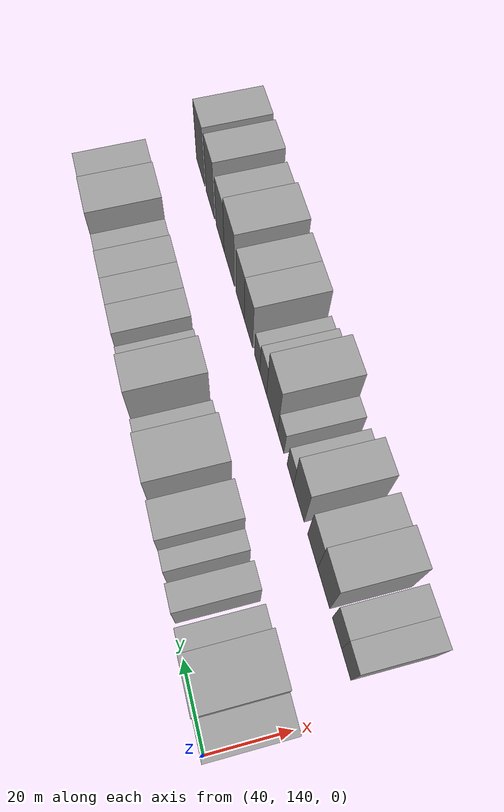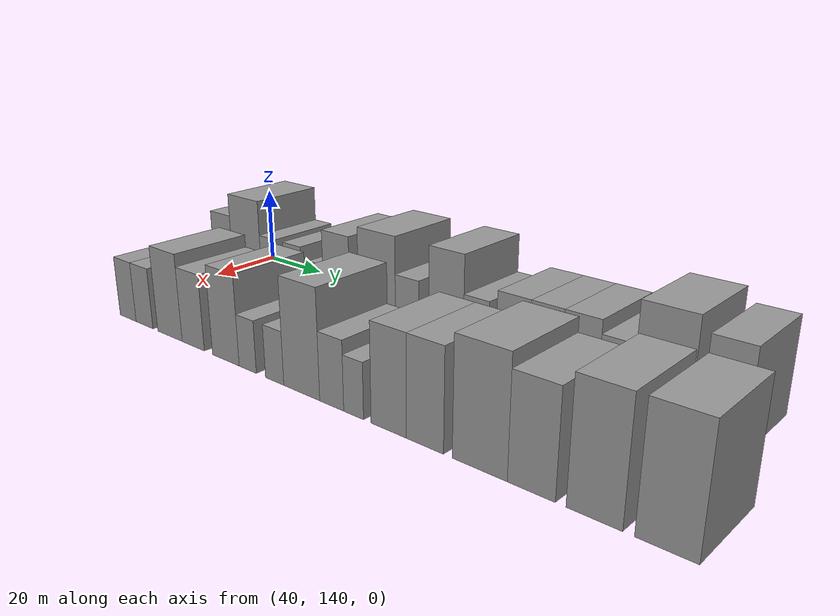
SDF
<sdf version="1.6">
 <world name="default">
  <model name="building_48">
   <static>1</static>
   <pose>50.0000 142.7689 0 0.000000 0.000000 0.000000</pose>
   <link name="link">
    <pose>0 0 9.00 0 0 0</pose>
    <collision name="collision"><geometry><box><size>20.0000 8.1947 18.0000</size></box></geometry></collision>
    <visual name="visual">
     <cast_shadows>0</cast_shadows>
     <geometry><box><size>20.0000 8.1947 18.0000</size></box></geometry>
     <material>
      <script>
       <uri>model://grey_wall/materials/scripts</uri>
       <uri>model://grey_wall/materials/textures</uri>
       <name>vrc/grey_wall</name>
      </script>
     </material>
    </visual>
   </link>
  </model>
  <model name="building_49">
   <static>1</static>
   <pose>50.0000 152.8509 0 0.000000 0.000000 0.000000</pose>
   <link name="link">
    <pose>0 0 12.00 0 0 0</pose>
    <collision name="collision"><geometry><box><size>20.0000 11.9694 24.0000</size></box></geometry></collision>
    <visual name="visual">
     <cast_shadows>0</cast_shadows>
     <geometry><box><size>20.0000 11.9694 24.0000</size></box></geometry>
     <material>
      <script>
       <uri>model://grey_wall/materials/scripts</uri>
       <uri>model://grey_wall/materials/textures</uri>
       <name>vrc/grey_wall</name>
      </script>
     </material>
    </visual>
   </link>
  </model>
  <model name="building_50">
   <static>1</static>
   <pose>50.0000 161.9221 0 0.000000 0.000000 0.000000</pose>
   <link name="link">
    <pose>0 0 7.50 0 0 0</pose>
    <collision name="collision"><geometry><box><size>20.0000 6.1730 15.0000</size></box></geometry></collision>
    <visual name="visual">
     <cast_shadows>0</cast_shadows>
     <geometry><box><size>20.0000 6.1730 15.0000</size></box></geometry>
     <material>
      <script>
       <uri>model://grey_wall/materials/scripts</uri>
       <uri>model://grey_wall/materials/textures</uri>
       <name>vrc/grey_wall</name>
      </script>
     </material>
    </visual>
   </link>
  </model>
  <model name="building_51">
   <static>1</static>
   <pose>50.0000 171.2372 0 0.000000 0.000000 0.000000</pose>
   <link name="link">
    <pose>0 0 7.50 0 0 0</pose>
    <collision name="collision"><geometry><box><size>20.0000 6.4571 15.0000</size></box></geometry></collision>
    <visual name="visual">
     <cast_shadows>0</cast_shadows>
     <geometry><box><size>20.0000 6.4571 15.0000</size></box></geometry>
     <material>
      <script>
       <uri>model://grey_wall/materials/scripts</uri>
       <uri>model://grey_wall/materials/textures</uri>
       <name>vrc/grey_wall</name>
      </script>
     </material>
    </visual>
   </link>
  </model>
  <model name="building_52">
   <static>1</static>
   <pose>50.0000 179.9599 0 0.000000 0.000000 0.000000</pose>
   <link name="link">
    <pose>0 0 6.00 0 0 0</pose>
    <collision name="collision"><geometry><box><size>20.0000 4.9883 12.0000</size></box></geometry></collision>
    <visual name="visual">
     <cast_shadows>0</cast_shadows>
     <geometry><box><size>20.0000 4.9883 12.0000</size></box></geometry>
     <material>
      <script>
       <uri>model://grey_wall/materials/scripts</uri>
       <uri>model://grey_wall/materials/textures</uri>
       <name>vrc/grey_wall</name>
      </script>
     </material>
    </visual>
   </link>
  </model>
  <model name="building_53">
   <static>1</static>
   <pose>50.0000 187.0198 0 0.000000 0.000000 0.000000</pose>
   <link name="link">
    <pose>0 0 10.50 0 0 0</pose>
    <collision name="collision"><geometry><box><size>20.0000 9.1315 21.0000</size></box></geometry></collision>
    <visual name="visual">
     <cast_shadows>0</cast_shadows>
     <geometry><box><size>20.0000 9.1315 21.0000</size></box></geometry>
     <material>
      <script>
       <uri>model://grey_wall/materials/scripts</uri>
       <uri>model://grey_wall/materials/textures</uri>
       <name>vrc/grey_wall</name>
      </script>
     </material>
    </visual>
   </link>
  </model>
  <model name="building_54">
   <static>1</static>
   <pose>50.0000 200.5181 0 0.000000 0.000000 0.000000</pose>
   <link name="link">
    <pose>0 0 12.00 0 0 0</pose>
    <collision name="collision"><geometry><box><size>20.0000 11.8651 24.0000</size></box></geometry></collision>
    <visual name="visual">
     <cast_shadows>0</cast_shadows>
     <geometry><box><size>20.0000 11.8651 24.0000</size></box></geometry>
     <material>
      <script>
       <uri>model://grey_wall/materials/scripts</uri>
       <uri>model://grey_wall/materials/textures</uri>
       <name>vrc/grey_wall</name>
      </script>
     </material>
    </visual>
   </link>
  </model>
  <model name="building_55">
   <static>1</static>
   <pose>50.0000 209.9860 0 0.000000 0.000000 0.000000</pose>
   <link name="link">
    <pose>0 0 7.50 0 0 0</pose>
    <collision name="collision"><geometry><box><size>20.0000 7.0707 15.0000</size></box></geometry></collision>
    <visual name="visual">
     <cast_shadows>0</cast_shadows>
     <geometry><box><size>20.0000 7.0707 15.0000</size></box></geometry>
     <material>
      <script>
       <uri>model://grey_wall/materials/scripts</uri>
       <uri>model://grey_wall/materials/textures</uri>
       <name>vrc/grey_wall</name>
      </script>
     </material>
    </visual>
   </link>
  </model>
  <model name="building_56">
   <static>1</static>
   <pose>50.0000 221.4651 0 0.000000 0.000000 0.000000</pose>
   <link name="link">
    <pose>0 0 12.00 0 0 0</pose>
    <collision name="collision"><geometry><box><size>20.0000 9.8875 24.0000</size></box></geometry></collision>
    <visual name="visual">
     <cast_shadows>0</cast_shadows>
     <geometry><box><size>20.0000 9.8875 24.0000</size></box></geometry>
     <material>
      <script>
       <uri>model://grey_wall/materials/scripts</uri>
       <uri>model://grey_wall/materials/textures</uri>
       <name>vrc/grey_wall</name>
      </script>
     </material>
    </visual>
   </link>
  </model>
  <model name="building_57">
   <static>1</static>
   <pose>50.0000 229.8270 0 0.000000 0.000000 0.000000</pose>
   <link name="link">
    <pose>0 0 7.50 0 0 0</pose>
    <collision name="collision"><geometry><box><size>20.0000 6.8363 15.0000</size></box></geometry></collision>
    <visual name="visual">
     <cast_shadows>0</cast_shadows>
     <geometry><box><size>20.0000 6.8363 15.0000</size></box></geometry>
     <material>
      <script>
       <uri>model://grey_wall/materials/scripts</uri>
       <uri>model://grey_wall/materials/textures</uri>
       <name>vrc/grey_wall</name>
      </script>
     </material>
    </visual>
   </link>
  </model>
  <model name="building_58">
   <static>1</static>
   <pose>50.0000 239.4545 0 0.000000 0.000000 0.000000</pose>
   <link name="link">
    <pose>0 0 9.00 0 0 0</pose>
    <collision name="collision"><geometry><box><size>20.0000 8.4186 18.0000</size></box></geometry></collision>
    <visual name="visual">
     <cast_shadows>0</cast_shadows>
     <geometry><box><size>20.0000 8.4186 18.0000</size></box></geometry>
     <material>
      <script>
       <uri>model://grey_wall/materials/scripts</uri>
       <uri>model://grey_wall/materials/textures</uri>
       <name>vrc/grey_wall</name>
      </script>
     </material>
    </visual>
   </link>
  </model>
  <model name="building_59">
   <static>1</static>
   <pose>50.0000 247.6351 0 0.000000 0.000000 0.000000</pose>
   <link name="link">
    <pose>0 0 9.00 0 0 0</pose>
    <collision name="collision"><geometry><box><size>20.0000 7.9426 18.0000</size></box></geometry></collision>
    <visual name="visual">
     <cast_shadows>0</cast_shadows>
     <geometry><box><size>20.0000 7.9426 18.0000</size></box></geometry>
     <material>
      <script>
       <uri>model://grey_wall/materials/scripts</uri>
       <uri>model://grey_wall/materials/textures</uri>
       <name>vrc/grey_wall</name>
      </script>
     </material>
    </visual>
   </link>
  </model>
  <model name="building_60">
   <static>1</static>
   <pose>50.0000 255.8206 0 0.000000 0.000000 0.000000</pose>
   <link name="link">
    <pose>0 0 9.00 0 0 0</pose>
    <collision name="collision"><geometry><box><size>20.0000 8.4284 18.0000</size></box></geometry></collision>
    <visual name="visual">
     <cast_shadows>0</cast_shadows>
     <geometry><box><size>20.0000 8.4284 18.0000</size></box></geometry>
     <material>
      <script>
       <uri>model://grey_wall/materials/scripts</uri>
       <uri>model://grey_wall/materials/textures</uri>
       <name>vrc/grey_wall</name>
      </script>
     </material>
    </visual>
   </link>
  </model>
  <model name="building_61">
   <static>1</static>
   <pose>50.0000 263.7699 0 0.000000 0.000000 0.000000</pose>
   <link name="link">
    <pose>0 0 7.50 0 0 0</pose>
    <collision name="collision"><geometry><box><size>20.0000 7.4702 15.0000</size></box></geometry></collision>
    <visual name="visual">
     <cast_shadows>0</cast_shadows>
     <geometry><box><size>20.0000 7.4702 15.0000</size></box></geometry>
     <material>
      <script>
       <uri>model://grey_wall/materials/scripts</uri>
       <uri>model://grey_wall/materials/textures</uri>
       <name>vrc/grey_wall</name>
      </script>
     </material>
    </visual>
   </link>
  </model>
  <model name="building_62">
   <static>1</static>
   <pose>50.0000 273.4328 0 0.000000 0.000000 0.000000</pose>
   <link name="link">
    <pose>0 0 12.00 0 0 0</pose>
    <collision name="collision"><geometry><box><size>20.0000 11.8557 24.0000</size></box></geometry></collision>
    <visual name="visual">
     <cast_shadows>0</cast_shadows>
     <geometry><box><size>20.0000 11.8557 24.0000</size></box></geometry>
     <material>
      <script>
       <uri>model://grey_wall/materials/scripts</uri>
       <uri>model://grey_wall/materials/textures</uri>
       <name>vrc/grey_wall</name>
      </script>
     </material>
    </visual>
   </link>
  </model>
  <model name="building_63">
   <static>1</static>
   <pose>50.0000 285.7051 0 0.000000 0.000000 0.000000</pose>
   <link name="link">
    <pose>0 0 10.50 0 0 0</pose>
    <collision name="collision"><geometry><box><size>20.0000 8.6888 21.0000</size></box></geometry></collision>
    <visual name="visual">
     <cast_shadows>0</cast_shadows>
     <geometry><box><size>20.0000 8.6888 21.0000</size></box></geometry>
     <material>
      <script>
       <uri>model://grey_wall/materials/scripts</uri>
       <uri>model://grey_wall/materials/textures</uri>
       <name>vrc/grey_wall</name>
      </script>
     </material>
    </visual>
   </link>
  </model>
  <model name="building_111">
   <static>1</static>
   <pose>85.0000 149.9603 0 0.000000 0.000000 0.000000</pose>
   <link name="link">
    <pose>0 0 7.50 0 0 0</pose>
    <collision name="collision"><geometry><box><size>20.0000 6.8652 15.0000</size></box></geometry></collision>
    <visual name="visual">
     <cast_shadows>0</cast_shadows>
     <geometry><box><size>20.0000 6.8652 15.0000</size></box></geometry>
     <material>
      <script>
       <uri>model://grey_wall/materials/scripts</uri>
       <uri>model://grey_wall/materials/textures</uri>
       <name>vrc/grey_wall</name>
      </script>
     </material>
    </visual>
   </link>
  </model>
  <model name="building_112">
   <static>1</static>
   <pose>85.0000 156.9005 0 0.000000 0.000000 0.000000</pose>
   <link name="link">
    <pose>0 0 7.50 0 0 0</pose>
    <collision name="collision"><geometry><box><size>20.0000 7.0152 15.0000</size></box></geometry></collision>
    <visual name="visual">
     <cast_shadows>0</cast_shadows>
     <geometry><box><size>20.0000 7.0152 15.0000</size></box></geometry>
     <material>
      <script>
       <uri>model://grey_wall/materials/scripts</uri>
       <uri>model://grey_wall/materials/textures</uri>
       <name>vrc/grey_wall</name>
      </script>
     </material>
    </visual>
   </link>
  </model>
  <model name="building_113">
   <static>1</static>
   <pose>85.0000 167.2164 0 0.000000 0.000000 0.000000</pose>
   <link name="link">
    <pose>0 0 10.50 0 0 0</pose>
    <collision name="collision"><geometry><box><size>20.0000 9.6166 21.0000</size></box></geometry></collision>
    <visual name="visual">
     <cast_shadows>0</cast_shadows>
     <geometry><box><size>20.0000 9.6166 21.0000</size></box></geometry>
     <material>
      <script>
       <uri>model://grey_wall/materials/scripts</uri>
       <uri>model://grey_wall/materials/textures</uri>
       <name>vrc/grey_wall</name>
      </script>
     </material>
    </visual>
   </link>
  </model>
  <model name="building_114">
   <static>1</static>
   <pose>85.0000 176.1676 0 0.000000 0.000000 0.000000</pose>
   <link name="link">
    <pose>0 0 9.00 0 0 0</pose>
    <collision name="collision"><geometry><box><size>20.0000 8.2857 18.0000</size></box></geometry></collision>
    <visual name="visual">
     <cast_shadows>0</cast_shadows>
     <geometry><box><size>20.0000 8.2857 18.0000</size></box></geometry>
     <material>
      <script>
       <uri>model://grey_wall/materials/scripts</uri>
       <uri>model://grey_wall/materials/textures</uri>
       <name>vrc/grey_wall</name>
      </script>
     </material>
    </visual>
   </link>
  </model>
  <model name="building_115">
   <static>1</static>
   <pose>85.0000 187.9529 0 0.000000 0.000000 0.000000</pose>
   <link name="link">
    <pose>0 0 10.50 0 0 0</pose>
    <collision name="collision"><geometry><box><size>20.0000 9.2848 21.0000</size></box></geometry></collision>
    <visual name="visual">
     <cast_shadows>0</cast_shadows>
     <geometry><box><size>20.0000 9.2848 21.0000</size></box></geometry>
     <material>
      <script>
       <uri>model://grey_wall/materials/scripts</uri>
       <uri>model://grey_wall/materials/textures</uri>
       <name>vrc/grey_wall</name>
      </script>
     </material>
    </visual>
   </link>
  </model>
  <model name="building_116">
   <static>1</static>
   <pose>85.0000 195.4492 0 0.000000 0.000000 0.000000</pose>
   <link name="link">
    <pose>0 0 6.00 0 0 0</pose>
    <collision name="collision"><geometry><box><size>20.0000 5.7078 12.0000</size></box></geometry></collision>
    <visual name="visual">
     <cast_shadows>0</cast_shadows>
     <geometry><box><size>20.0000 5.7078 12.0000</size></box></geometry>
     <material>
      <script>
       <uri>model://grey_wall/materials/scripts</uri>
       <uri>model://grey_wall/materials/textures</uri>
       <name>vrc/grey_wall</name>
      </script>
     </material>
    </visual>
   </link>
  </model>
  <model name="building_117">
   <static>1</static>
   <pose>85.0000 204.1736 0 0.000000 0.000000 0.000000</pose>
   <link name="link">
    <pose>0 0 6.00 0 0 0</pose>
    <collision name="collision"><geometry><box><size>20.0000 5.7411 12.0000</size></box></geometry></collision>
    <visual name="visual">
     <cast_shadows>0</cast_shadows>
     <geometry><box><size>20.0000 5.7411 12.0000</size></box></geometry>
     <material>
      <script>
       <uri>model://grey_wall/materials/scripts</uri>
       <uri>model://grey_wall/materials/textures</uri>
       <name>vrc/grey_wall</name>
      </script>
     </material>
    </visual>
   </link>
  </model>
  <model name="building_118">
   <static>1</static>
   <pose>85.0000 212.4095 0 0.000000 0.000000 0.000000</pose>
   <link name="link">
    <pose>0 0 12.00 0 0 0</pose>
    <collision name="collision"><geometry><box><size>20.0000 10.7307 24.0000</size></box></geometry></collision>
    <visual name="visual">
     <cast_shadows>0</cast_shadows>
     <geometry><box><size>20.0000 10.7307 24.0000</size></box></geometry>
     <material>
      <script>
       <uri>model://grey_wall/materials/scripts</uri>
       <uri>model://grey_wall/materials/textures</uri>
       <name>vrc/grey_wall</name>
      </script>
     </material>
    </visual>
   </link>
  </model>
  <model name="building_119">
   <static>1</static>
   <pose>85.0000 221.1549 0 0.000000 0.000000 0.000000</pose>
   <link name="link">
    <pose>0 0 7.50 0 0 0</pose>
    <collision name="collision"><geometry><box><size>20.0000 6.7600 15.0000</size></box></geometry></collision>
    <visual name="visual">
     <cast_shadows>0</cast_shadows>
     <geometry><box><size>20.0000 6.7600 15.0000</size></box></geometry>
     <material>
      <script>
       <uri>model://grey_wall/materials/scripts</uri>
       <uri>model://grey_wall/materials/textures</uri>
       <name>vrc/grey_wall</name>
      </script>
     </material>
    </visual>
   </link>
  </model>
  <model name="building_120">
   <static>1</static>
   <pose>85.0000 227.2098 0 0.000000 0.000000 0.000000</pose>
   <link name="link">
    <pose>0 0 6.00 0 0 0</pose>
    <collision name="collision"><geometry><box><size>20.0000 5.3500 12.0000</size></box></geometry></collision>
    <visual name="visual">
     <cast_shadows>0</cast_shadows>
     <geometry><box><size>20.0000 5.3500 12.0000</size></box></geometry>
     <material>
      <script>
       <uri>model://grey_wall/materials/scripts</uri>
       <uri>model://grey_wall/materials/textures</uri>
       <name>vrc/grey_wall</name>
      </script>
     </material>
    </visual>
   </link>
  </model>
  <model name="building_121">
   <static>1</static>
   <pose>85.0000 236.3554 0 0.000000 0.000000 0.000000</pose>
   <link name="link">
    <pose>0 0 10.50 0 0 0</pose>
    <collision name="collision"><geometry><box><size>20.0000 8.9411 21.0000</size></box></geometry></collision>
    <visual name="visual">
     <cast_shadows>0</cast_shadows>
     <geometry><box><size>20.0000 8.9411 21.0000</size></box></geometry>
     <material>
      <script>
       <uri>model://grey_wall/materials/scripts</uri>
       <uri>model://grey_wall/materials/textures</uri>
       <name>vrc/grey_wall</name>
      </script>
     </material>
    </visual>
   </link>
  </model>
  <model name="building_122">
   <static>1</static>
   <pose>85.0000 245.2283 0 0.000000 0.000000 0.000000</pose>
   <link name="link">
    <pose>0 0 10.50 0 0 0</pose>
    <collision name="collision"><geometry><box><size>20.0000 8.8048 21.0000</size></box></geometry></collision>
    <visual name="visual">
     <cast_shadows>0</cast_shadows>
     <geometry><box><size>20.0000 8.8048 21.0000</size></box></geometry>
     <material>
      <script>
       <uri>model://grey_wall/materials/scripts</uri>
       <uri>model://grey_wall/materials/textures</uri>
       <name>vrc/grey_wall</name>
      </script>
     </material>
    </visual>
   </link>
  </model>
  <model name="building_123">
   <static>1</static>
   <pose>85.0000 257.5753 0 0.000000 0.000000 0.000000</pose>
   <link name="link">
    <pose>0 0 12.00 0 0 0</pose>
    <collision name="collision"><geometry><box><size>20.0000 11.8892 24.0000</size></box></geometry></collision>
    <visual name="visual">
     <cast_shadows>0</cast_shadows>
     <geometry><box><size>20.0000 11.8892 24.0000</size></box></geometry>
     <material>
      <script>
       <uri>model://grey_wall/materials/scripts</uri>
       <uri>model://grey_wall/materials/textures</uri>
       <name>vrc/grey_wall</name>
      </script>
     </material>
    </visual>
   </link>
  </model>
  <model name="building_124">
   <static>1</static>
   <pose>85.0000 268.3009 0 0.000000 0.000000 0.000000</pose>
   <link name="link">
    <pose>0 0 10.50 0 0 0</pose>
    <collision name="collision"><geometry><box><size>20.0000 9.5619 21.0000</size></box></geometry></collision>
    <visual name="visual">
     <cast_shadows>0</cast_shadows>
     <geometry><box><size>20.0000 9.5619 21.0000</size></box></geometry>
     <material>
      <script>
       <uri>model://grey_wall/materials/scripts</uri>
       <uri>model://grey_wall/materials/textures</uri>
       <name>vrc/grey_wall</name>
      </script>
     </material>
    </visual>
   </link>
  </model>
  <model name="building_125">
   <static>1</static>
   <pose>85.0000 280.1923 0 0.000000 0.000000 0.000000</pose>
   <link name="link">
    <pose>0 0 12.00 0 0 0</pose>
    <collision name="collision"><geometry><box><size>20.0000 10.2208 24.0000</size></box></geometry></collision>
    <visual name="visual">
     <cast_shadows>0</cast_shadows>
     <geometry><box><size>20.0000 10.2208 24.0000</size></box></geometry>
     <material>
      <script>
       <uri>model://grey_wall/materials/scripts</uri>
       <uri>model://grey_wall/materials/textures</uri>
       <name>vrc/grey_wall</name>
      </script>
     </material>
    </visual>
   </link>
  </model>
  <model name="building_126">
   <static>1</static>
   <pose>85.0000 292.5855 0 0.000000 0.000000 0.000000</pose>
   <link name="link">
    <pose>0 0 12.00 0 0 0</pose>
    <collision name="collision"><geometry><box><size>20.0000 10.5657 24.0000</size></box></geometry></collision>
    <visual name="visual">
     <cast_shadows>0</cast_shadows>
     <geometry><box><size>20.0000 10.5657 24.0000</size></box></geometry>
     <material>
      <script>
       <uri>model://grey_wall/materials/scripts</uri>
       <uri>model://grey_wall/materials/textures</uri>
       <name>vrc/grey_wall</name>
      </script>
     </material>
    </visual>
   </link>
  </model>
 </world>
</sdf>
